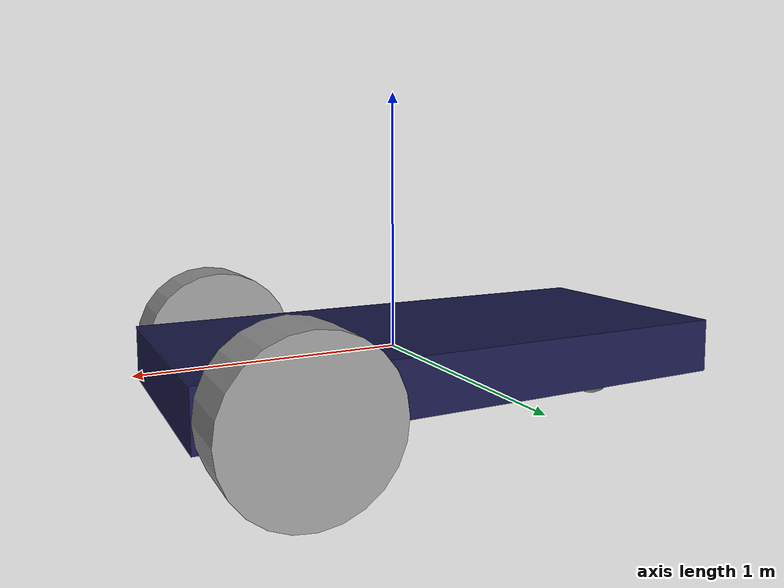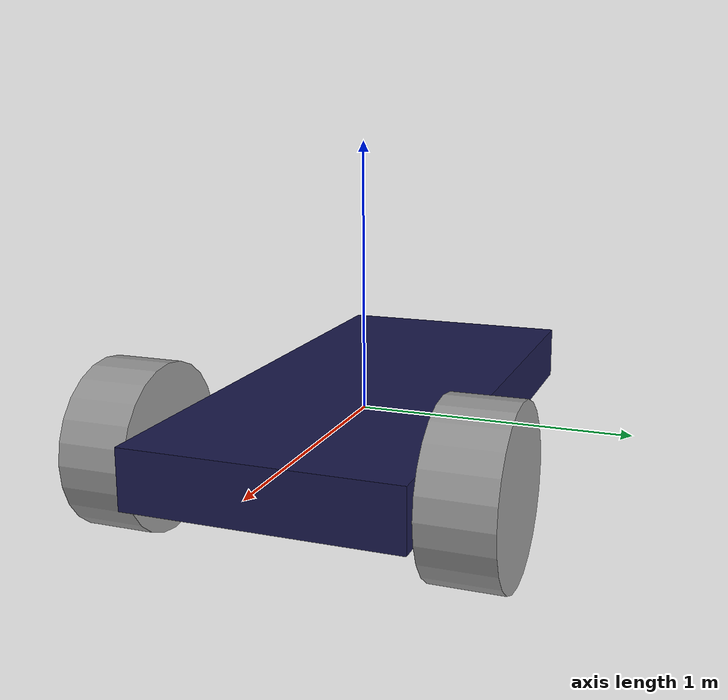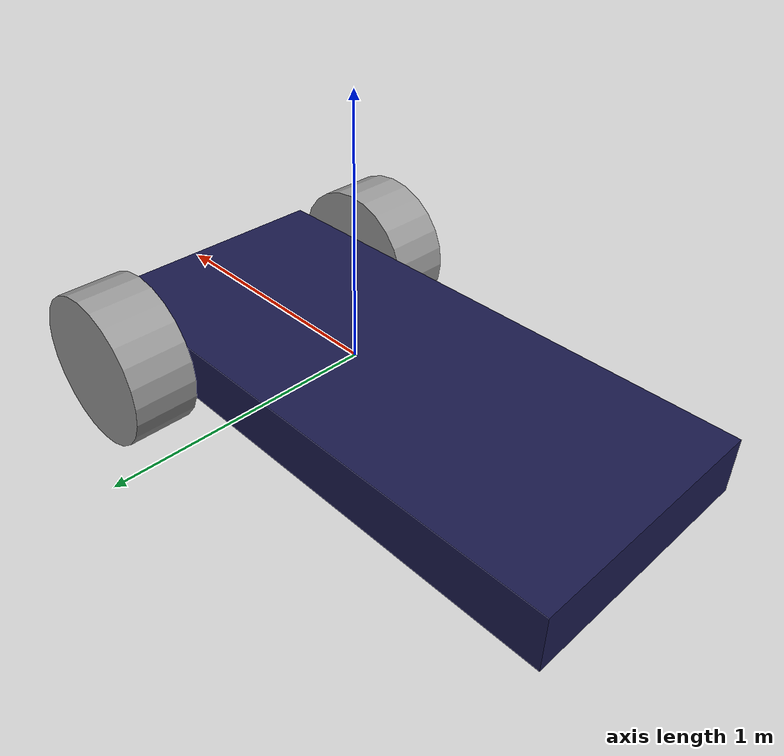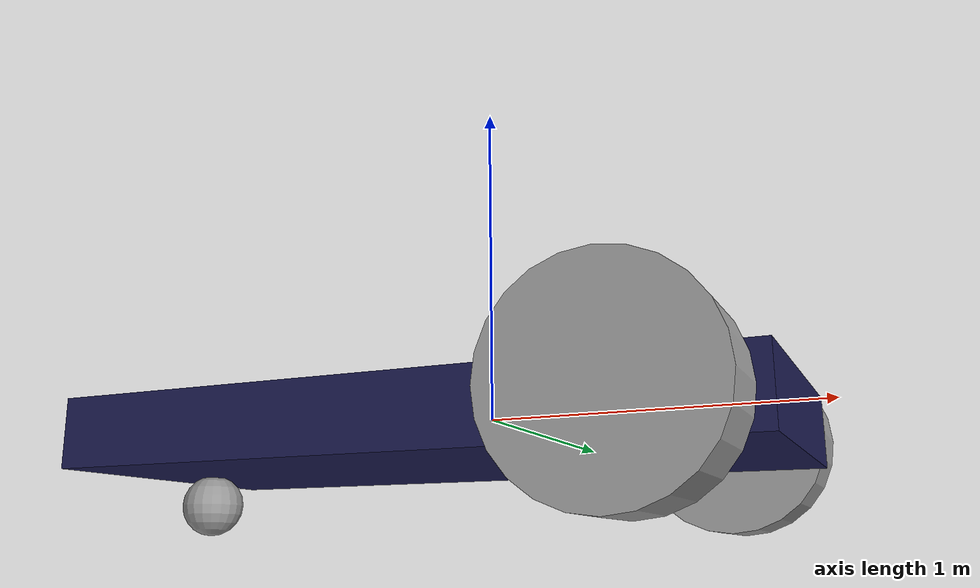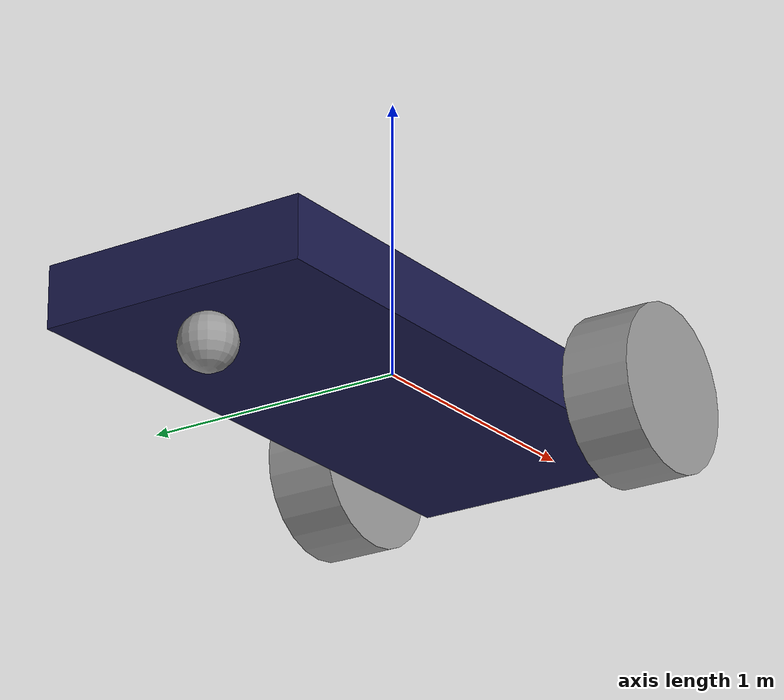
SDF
<?xml version='1.0'?>
<sdf version='1.7'>
  <model name='myrobot'>
    <link name='link_0'>
      <inertial>
        <mass>0.455061</mass>
        <inertia>
          <ixx>0.0381176</ixx>
          <ixy>0</ixy>
          <ixz>0</ixz>
          <iyy>0.174896</iyy>
          <iyz>0</iyz>
          <izz>0.209418</izz>
        </inertia>
        <pose>0 0 0.4 0 -0 0</pose>
      </inertial>
      <pose>-0.16006 -0.012412 -0.032907 0 -0 0</pose>
      <gravity>1</gravity>
      <self_collide>0</self_collide>
      <kinematic>0</kinematic>
      <enable_wind>0</enable_wind>
      <visual name='visual'>
        <pose>0 0 0 0 -0 0</pose>
        <geometry>
          <box>
            <size>2.1365 0.978651 0.217729</size>
          </box>
        </geometry>
        <material>
          <lighting>1</lighting>
          <script>
            <uri>file://media/materials/scripts/gazebo.material</uri>
            <name>Gazebo/Grey</name>
          </script>
          <shader type='pixel'>
            <normal_map>__default__</normal_map>
          </shader>
          <ambient>0.1 0.1 0.3 1</ambient>
          <diffuse>0.7 0.7 0.7 1</diffuse>
          <specular>0.01 0.01 0.01 1</specular>
          <emissive>0 0 0 1</emissive>
        </material>
        <transparency>0</transparency>
        <cast_shadows>1</cast_shadows>
      </visual>
      <collision name='collision'>
        <laser_retro>0</laser_retro>
        <max_contacts>10</max_contacts>
        <pose>0 0 0 0 -0 0</pose>
        <geometry>
          <box>
            <size>2.1365 0.978651 0.217729</size>
          </box>
        </geometry>
        <surface>
          <friction>
            <ode>
              <mu>1</mu>
              <mu2>1</mu2>
              <fdir1>0 0 0</fdir1>
              <slip1>0</slip1>
              <slip2>0</slip2>
            </ode>
            <torsional>
              <coefficient>1</coefficient>
              <patch_radius>0</patch_radius>
              <surface_radius>0</surface_radius>
              <use_patch_radius>1</use_patch_radius>
              <ode>
                <slip>0</slip>
              </ode>
            </torsional>
          </friction>
          <bounce>
            <restitution_coefficient>0</restitution_coefficient>
            <threshold>1e+06</threshold>
          </bounce>
          <contact>
            <collide_without_contact>0</collide_without_contact>
            <collide_without_contact_bitmask>1</collide_without_contact_bitmask>
            <collide_bitmask>1</collide_bitmask>
            <ode>
              <soft_cfm>0</soft_cfm>
              <soft_erp>0.2</soft_erp>
              <kp>1e+13</kp>
              <kd>1</kd>
              <max_vel>0.01</max_vel>
              <min_depth>0</min_depth>
            </ode>
            <bullet>
              <split_impulse>1</split_impulse>
              <split_impulse_penetration_threshold>-0.01</split_impulse_penetration_threshold>
              <soft_cfm>0</soft_cfm>
              <soft_erp>0.2</soft_erp>
              <kp>1e+13</kp>
              <kd>1</kd>
            </bullet>
          </contact>
        </surface>
      </collision>
    </link>
    <link name='link_3'>
      <inertial>
        <mass>1</mass>
        <inertia>
          <ixx>0.145833</ixx>
          <ixy>0</ixy>
          <ixz>0</ixz>
          <iyy>0.145833</iyy>
          <iyz>0</iyz>
          <izz>0.125</izz>
        </inertia>
        <pose>0 0 0 0 -0 0</pose>
      </inertial>
      <pose>0.608189 0.616943 -0.032907 1.5707 -0 0</pose>
      <gravity>1</gravity>
      <self_collide>0</self_collide>
      <kinematic>0</kinematic>
      <enable_wind>0</enable_wind>
      <visual name='visual'>
        <pose>0 0 0 0 -0 0</pose>
        <geometry>
          <cylinder>
            <radius>0.3</radius>
            <length>0.25</length>
          </cylinder>
        </geometry>
        <material>
          <lighting>1</lighting>
          <script>
            <uri>file://media/materials/scripts/gazebo.material</uri>
            <name>Gazebo/Grey</name>
          </script>
          <shader type='pixel'>
            <normal_map>__default__</normal_map>
          </shader>
          <ambient>0.3 0.3 0.3 1</ambient>
          <diffuse>0.7 0.7 0.7 1</diffuse>
          <specular>0.01 0.01 0.01 1</specular>
          <emissive>0 0 0 1</emissive>
        </material>
        <transparency>0</transparency>
        <cast_shadows>1</cast_shadows>
      </visual>
      <collision name='collision'>
        <laser_retro>0</laser_retro>
        <max_contacts>10</max_contacts>
        <pose>0 0 0 0 -0 0</pose>
        <geometry>
          <cylinder>
            <radius>0.3</radius>
            <length>0.25</length>
          </cylinder>
        </geometry>
        <surface>
          <friction>
            <ode>
              <mu>1</mu>
              <mu2>1</mu2>
              <fdir1>0 0 0</fdir1>
              <slip1>0</slip1>
              <slip2>0</slip2>
            </ode>
            <torsional>
              <coefficient>1</coefficient>
              <patch_radius>0</patch_radius>
              <surface_radius>0</surface_radius>
              <use_patch_radius>1</use_patch_radius>
              <ode>
                <slip>0</slip>
              </ode>
            </torsional>
          </friction>
          <bounce>
            <restitution_coefficient>0</restitution_coefficient>
            <threshold>1e+06</threshold>
          </bounce>
          <contact>
            <collide_without_contact>0</collide_without_contact>
            <collide_without_contact_bitmask>1</collide_without_contact_bitmask>
            <collide_bitmask>1</collide_bitmask>
            <ode>
              <soft_cfm>0</soft_cfm>
              <soft_erp>0.2</soft_erp>
              <kp>1e+13</kp>
              <kd>1</kd>
              <max_vel>0.01</max_vel>
              <min_depth>0</min_depth>
            </ode>
            <bullet>
              <split_impulse>1</split_impulse>
              <split_impulse_penetration_threshold>-0.01</split_impulse_penetration_threshold>
              <soft_cfm>0</soft_cfm>
              <soft_erp>0.2</soft_erp>
              <kp>1e+13</kp>
              <kd>1</kd>
            </bullet>
          </contact>
        </surface>
      </collision>
    </link>
    <link name='link_3_clone'>
      <inertial>
        <mass>1</mass>
        <inertia>
          <ixx>0.145833</ixx>
          <ixy>0</ixy>
          <ixz>0</ixz>
          <iyy>0.145833</iyy>
          <iyz>0</iyz>
          <izz>0.125</izz>
        </inertia>
        <pose>0 0 0 0 -0 0</pose>
      </inertial>
      <pose>0.567147 -0.626766 -0.032907 1.5707 -0 0</pose>
      <gravity>1</gravity>
      <self_collide>0</self_collide>
      <kinematic>0</kinematic>
      <enable_wind>0</enable_wind>
      <visual name='visual'>
        <pose>0 0 0 0 -0 0</pose>
        <geometry>
          <cylinder>
            <radius>0.3</radius>
            <length>0.25</length>
          </cylinder>
        </geometry>
        <material>
          <lighting>1</lighting>
          <script>
            <uri>file://media/materials/scripts/gazebo.material</uri>
            <name>Gazebo/Grey</name>
          </script>
          <shader type='pixel'>
            <normal_map>__default__</normal_map>
          </shader>
          <ambient>0.3 0.3 0.3 1</ambient>
          <diffuse>0.7 0.7 0.7 1</diffuse>
          <specular>0.01 0.01 0.01 1</specular>
          <emissive>0 0 0 1</emissive>
        </material>
        <transparency>0</transparency>
        <cast_shadows>1</cast_shadows>
      </visual>
      <collision name='collision'>
        <laser_retro>0</laser_retro>
        <max_contacts>10</max_contacts>
        <pose>0 0 0 0 -0 0</pose>
        <geometry>
          <cylinder>
            <radius>0.3</radius>
            <length>0.25</length>
          </cylinder>
        </geometry>
        <surface>
          <friction>
            <ode>
              <mu>1</mu>
              <mu2>1</mu2>
              <fdir1>0 0 0</fdir1>
              <slip1>0</slip1>
              <slip2>0</slip2>
            </ode>
            <torsional>
              <coefficient>1</coefficient>
              <patch_radius>0</patch_radius>
              <surface_radius>0</surface_radius>
              <use_patch_radius>1</use_patch_radius>
              <ode>
                <slip>0</slip>
              </ode>
            </torsional>
          </friction>
          <bounce>
            <restitution_coefficient>0</restitution_coefficient>
            <threshold>1e+06</threshold>
          </bounce>
          <contact>
            <collide_without_contact>0</collide_without_contact>
            <collide_without_contact_bitmask>1</collide_without_contact_bitmask>
            <collide_bitmask>1</collide_bitmask>
            <ode>
              <soft_cfm>0</soft_cfm>
              <soft_erp>0.2</soft_erp>
              <kp>1e+13</kp>
              <kd>1</kd>
              <max_vel>0.01</max_vel>
              <min_depth>0</min_depth>
            </ode>
            <bullet>
              <split_impulse>1</split_impulse>
              <split_impulse_penetration_threshold>-0.01</split_impulse_penetration_threshold>
              <soft_cfm>0</soft_cfm>
              <soft_erp>0.2</soft_erp>
              <kp>1e+13</kp>
              <kd>1</kd>
            </bullet>
          </contact>
        </surface>
      </collision>
    </link>
    <link name='link_5'>
      <inertial>
        <mass>1</mass>
        <inertia>
          <ixx>0.1</ixx>
          <ixy>0</ixy>
          <ixz>0</ixz>
          <iyy>0.1</iyy>
          <iyz>0</iyz>
          <izz>0.1</izz>
        </inertia>
        <pose>0 0 0 0 -0 0</pose>
      </inertial>
      <pose>-1.02831 -0.012412 -0.232907 0 -0 0</pose>
      <gravity>1</gravity>
      <self_collide>0</self_collide>
      <kinematic>0</kinematic>
      <enable_wind>0</enable_wind>
      <visual name='visual'>
        <pose>0 0 0 0 -0 0</pose>
        <geometry>
          <sphere>
            <radius>0.1</radius>
          </sphere>
        </geometry>
        <material>
          <lighting>1</lighting>
          <script>
            <uri>file://media/materials/scripts/gazebo.material</uri>
            <name>Gazebo/Grey</name>
          </script>
          <shader type='pixel'>
            <normal_map>__default__</normal_map>
          </shader>
          <ambient>0.3 0.3 0.3 1</ambient>
          <diffuse>0.7 0.7 0.7 1</diffuse>
          <specular>0.01 0.01 0.01 1</specular>
          <emissive>0 0 0 1</emissive>
        </material>
        <transparency>0</transparency>
        <cast_shadows>1</cast_shadows>
      </visual>
      <collision name='collision'>
        <laser_retro>0</laser_retro>
        <max_contacts>10</max_contacts>
        <pose>0 0 0 0 -0 0</pose>
        <geometry>
          <sphere>
            <radius>0.1</radius>
          </sphere>
        </geometry>
        <surface>
          <friction>
            <ode>
              <mu>1</mu>
              <mu2>1</mu2>
              <fdir1>0 0 0</fdir1>
              <slip1>0</slip1>
              <slip2>0</slip2>
            </ode>
            <torsional>
              <coefficient>1</coefficient>
              <patch_radius>0</patch_radius>
              <surface_radius>0</surface_radius>
              <use_patch_radius>1</use_patch_radius>
              <ode>
                <slip>0</slip>
              </ode>
            </torsional>
          </friction>
          <bounce>
            <restitution_coefficient>0</restitution_coefficient>
            <threshold>1e+06</threshold>
          </bounce>
          <contact>
            <collide_without_contact>0</collide_without_contact>
            <collide_without_contact_bitmask>1</collide_without_contact_bitmask>
            <collide_bitmask>1</collide_bitmask>
            <ode>
              <soft_cfm>0</soft_cfm>
              <soft_erp>0.2</soft_erp>
              <kp>1e+13</kp>
              <kd>1</kd>
              <max_vel>0.01</max_vel>
              <min_depth>0</min_depth>
            </ode>
            <bullet>
              <split_impulse>1</split_impulse>
              <split_impulse_penetration_threshold>-0.01</split_impulse_penetration_threshold>
              <soft_cfm>0</soft_cfm>
              <soft_erp>0.2</soft_erp>
              <kp>1e+13</kp>
              <kd>1</kd>
            </bullet>
          </contact>
        </surface>
      </collision>
    </link>
    <joint name='link_0_JOINT_0' type='revolute'>
      <parent>link_0</parent>
      <child>link_3</child>
      <pose>0 0 0 0 -0 0</pose>
      <axis>
        <xyz>0 0 1</xyz>
        <limit>
          <lower>-1.79769e+308</lower>
          <upper>1.79769e+308</upper>
          <effort>-1</effort>
          <velocity>-1</velocity>
        </limit>
        <dynamics>
          <spring_reference>0</spring_reference>
          <spring_stiffness>0</spring_stiffness>
          <damping>0</damping>
          <friction>0</friction>
        </dynamics>
      </axis>
      <physics>
        <ode>
          <limit>
            <cfm>0</cfm>
            <erp>0.2</erp>
          </limit>
          <suspension>
            <cfm>0</cfm>
            <erp>0.2</erp>
          </suspension>
        </ode>
      </physics>
    </joint>
    <joint name='link_0_JOINT_1' type='revolute'>
      <parent>link_0</parent>
      <child>link_3_clone</child>
      <pose>0 0 0 0 -0 0</pose>
      <axis>
        <xyz>0 0 1</xyz>
        <limit>
          <lower>-1.79769e+308</lower>
          <upper>1.79769e+308</upper>
          <effort>-1</effort>
          <velocity>-1</velocity>
        </limit>
        <dynamics>
          <spring_reference>0</spring_reference>
          <spring_stiffness>0</spring_stiffness>
          <damping>0</damping>
          <friction>0</friction>
        </dynamics>
      </axis>
      <physics>
        <ode>
          <limit>
            <cfm>0</cfm>
            <erp>0.2</erp>
          </limit>
          <suspension>
            <cfm>0</cfm>
            <erp>0.2</erp>
          </suspension>
        </ode>
      </physics>
    </joint>
    <joint name='link_0_JOINT_2' type='ball'>
      <parent>link_0</parent>
      <child>link_5</child>
      <pose>-0.03 0 0 0 -0 0</pose>
      <physics>
        <ode>
          <limit>
            <cfm>0</cfm>
            <erp>0.2</erp>
          </limit>
          <suspension>
            <cfm>0</cfm>
            <erp>0.2</erp>
          </suspension>
        </ode>
      </physics>
    </joint>
    <static>0</static>
    <allow_auto_disable>1</allow_auto_disable>
  </model>
</sdf>
